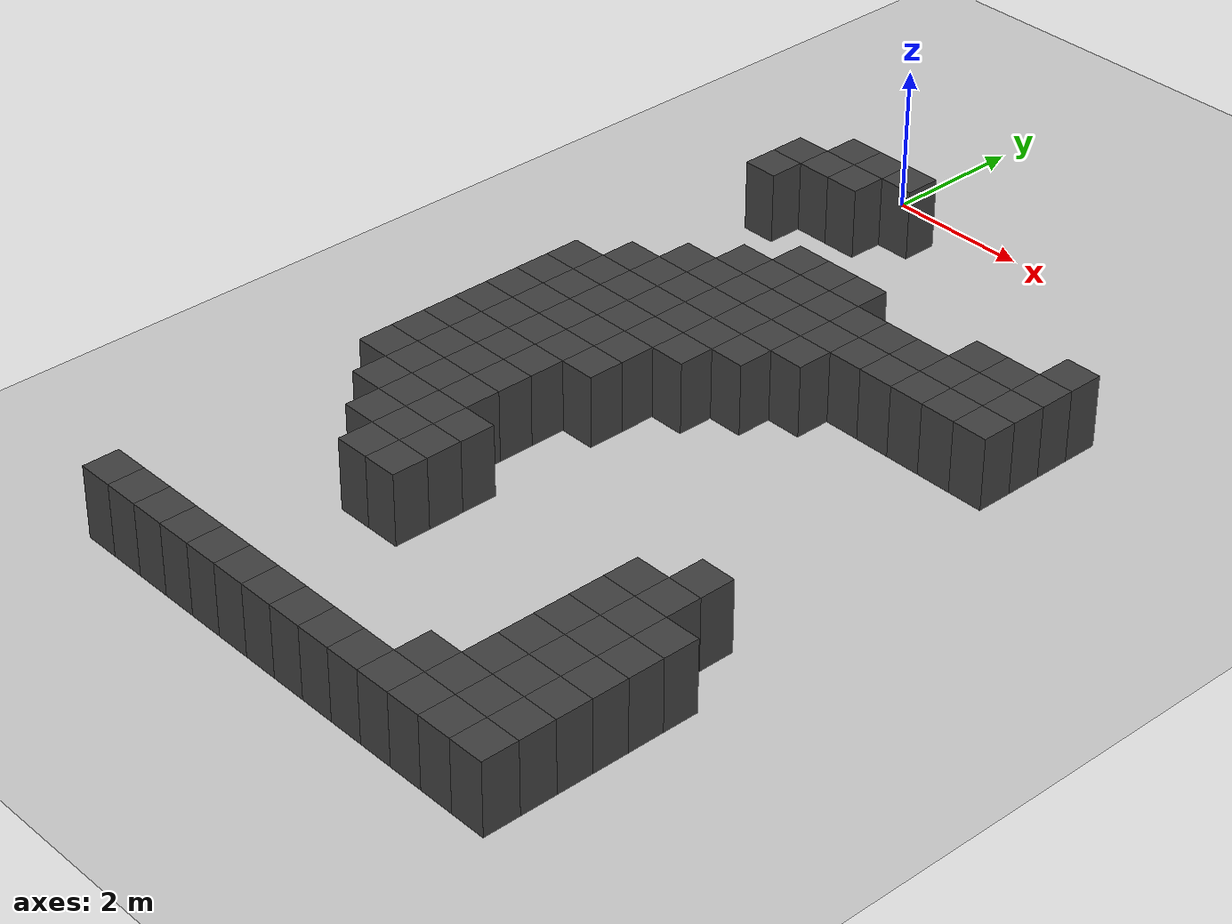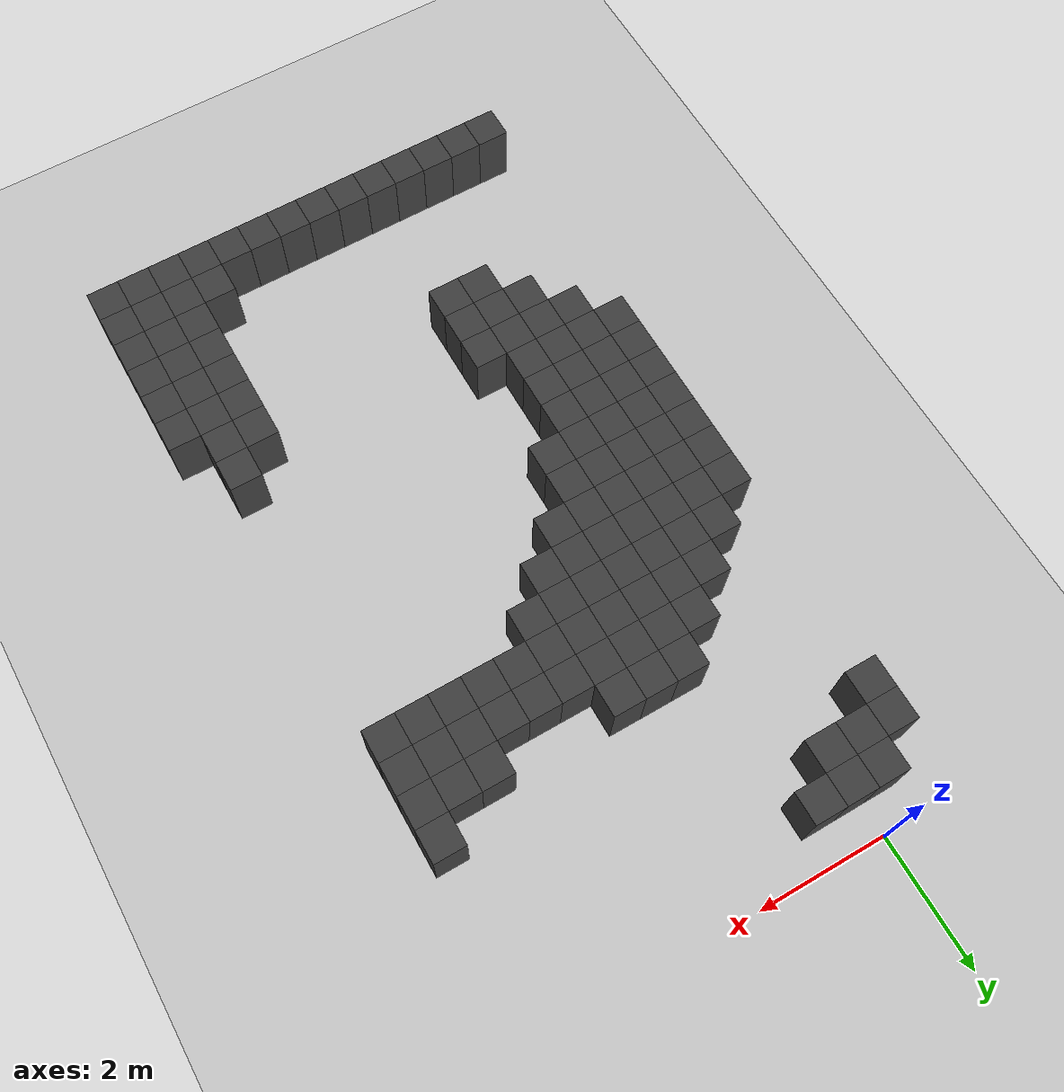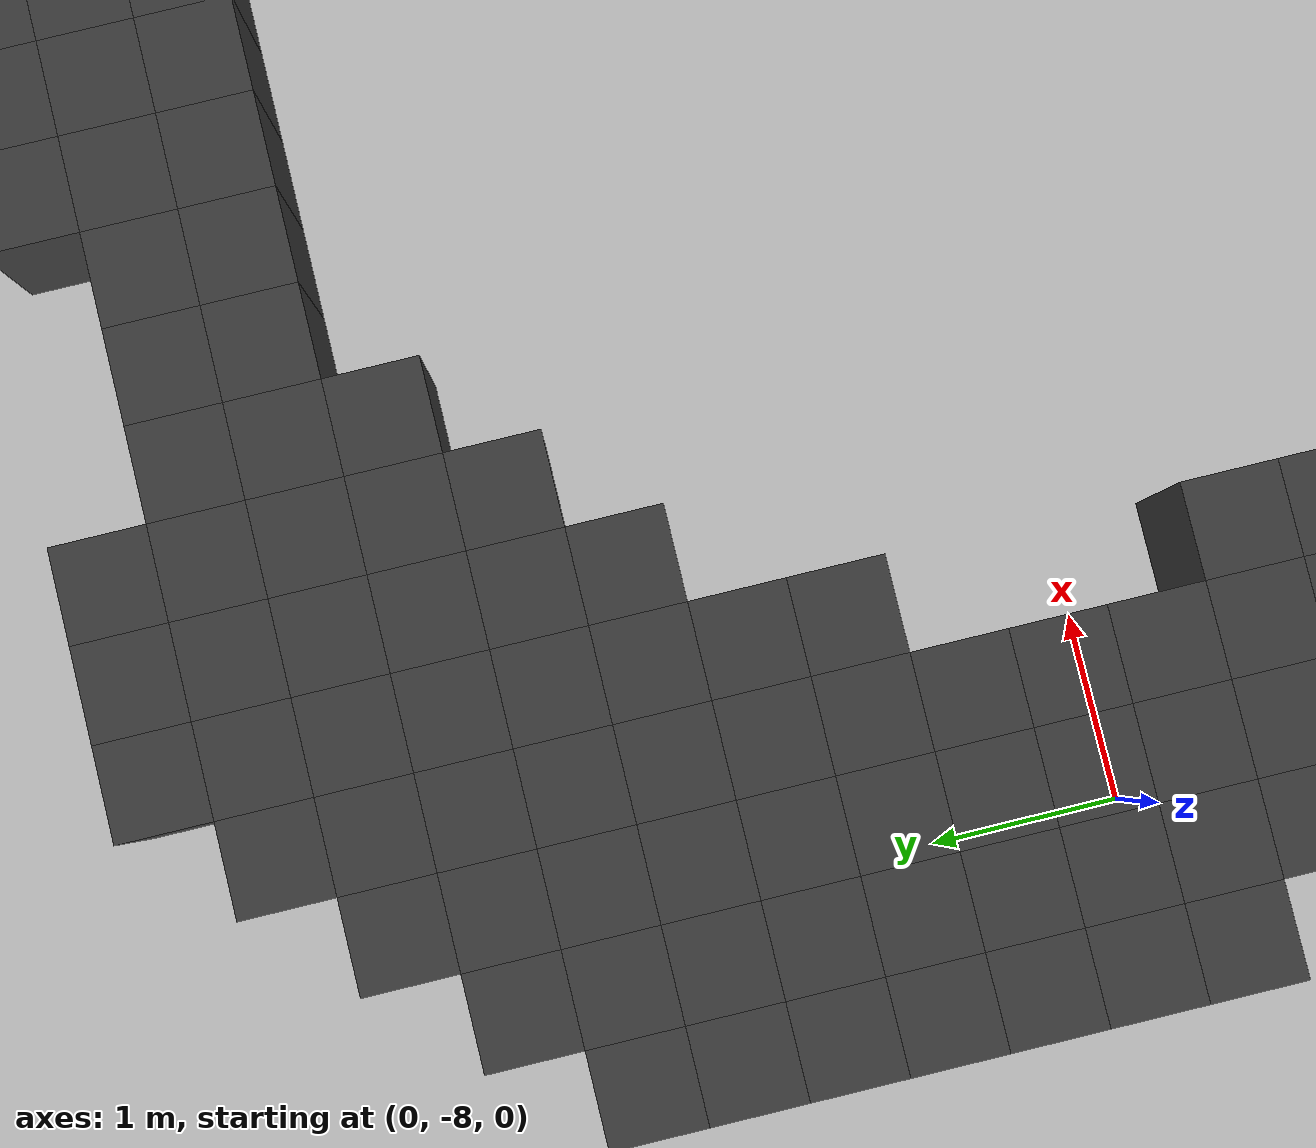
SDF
<sdf version="1.7">
 <world name="map_8074">
  <model name="ground_plane">
   <static>true</static>
   <link name="link">
    <collision name="collision">
     <geometry><plane><normal>0 0 1</normal><size>200 200</size></plane></geometry>
    </collision>
    <visual name="visual">
     <geometry><plane><normal>0 0 1</normal><size>200 200</size></plane></geometry>
     <material><ambient>0.8 0.8 0.8 1</ambient><diffuse>0.8 0.8 0.8 1</diffuse></material>
    </visual>
   </link>
  </model>
  <model name="maze_environment">
   <static>true</static>
   <link name="wall_388">
    <pose>-0.250 -0.750 0.500 0 0 0</pose>
    <collision name="col"><geometry><box><size>0.5 0.5 1.0</size></box></geometry></collision>
    <visual name="vis">
     <geometry><box><size>0.5 0.5 1.0</size></box></geometry>
     <material><ambient>0.15 0.15 0.15 1</ambient><diffuse>0.25 0.25 0.25 1</diffuse></material>
    </visual>
   </link>
   <link name="wall_389">
    <pose>0.250 -0.750 0.500 0 0 0</pose>
    <collision name="col"><geometry><box><size>0.5 0.5 1.0</size></box></geometry></collision>
    <visual name="vis">
     <geometry><box><size>0.5 0.5 1.0</size></box></geometry>
     <material><ambient>0.15 0.15 0.15 1</ambient><diffuse>0.25 0.25 0.25 1</diffuse></material>
    </visual>
   </link>
   <link name="wall_390">
    <pose>0.750 -0.750 0.500 0 0 0</pose>
    <collision name="col"><geometry><box><size>0.5 0.5 1.0</size></box></geometry></collision>
    <visual name="vis">
     <geometry><box><size>0.5 0.5 1.0</size></box></geometry>
     <material><ambient>0.15 0.15 0.15 1</ambient><diffuse>0.25 0.25 0.25 1</diffuse></material>
    </visual>
   </link>
   <link name="wall_418">
    <pose>-0.750 -1.250 0.500 0 0 0</pose>
    <collision name="col"><geometry><box><size>0.5 0.5 1.0</size></box></geometry></collision>
    <visual name="vis">
     <geometry><box><size>0.5 0.5 1.0</size></box></geometry>
     <material><ambient>0.15 0.15 0.15 1</ambient><diffuse>0.25 0.25 0.25 1</diffuse></material>
    </visual>
   </link>
   <link name="wall_419">
    <pose>-0.250 -1.250 0.500 0 0 0</pose>
    <collision name="col"><geometry><box><size>0.5 0.5 1.0</size></box></geometry></collision>
    <visual name="vis">
     <geometry><box><size>0.5 0.5 1.0</size></box></geometry>
     <material><ambient>0.15 0.15 0.15 1</ambient><diffuse>0.25 0.25 0.25 1</diffuse></material>
    </visual>
   </link>
   <link name="wall_420">
    <pose>0.250 -1.250 0.500 0 0 0</pose>
    <collision name="col"><geometry><box><size>0.5 0.5 1.0</size></box></geometry></collision>
    <visual name="vis">
     <geometry><box><size>0.5 0.5 1.0</size></box></geometry>
     <material><ambient>0.15 0.15 0.15 1</ambient><diffuse>0.25 0.25 0.25 1</diffuse></material>
    </visual>
   </link>
   <link name="wall_444">
    <pose>-0.750 -1.750 0.500 0 0 0</pose>
    <collision name="col"><geometry><box><size>0.5 0.5 1.0</size></box></geometry></collision>
    <visual name="vis">
     <geometry><box><size>0.5 0.5 1.0</size></box></geometry>
     <material><ambient>0.15 0.15 0.15 1</ambient><diffuse>0.25 0.25 0.25 1</diffuse></material>
    </visual>
   </link>
   <link name="wall_482">
    <pose>5.250 -2.750 0.500 0 0 0</pose>
    <collision name="col"><geometry><box><size>0.5 0.5 1.0</size></box></geometry></collision>
    <visual name="vis">
     <geometry><box><size>0.5 0.5 1.0</size></box></geometry>
     <material><ambient>0.15 0.15 0.15 1</ambient><diffuse>0.25 0.25 0.25 1</diffuse></material>
    </visual>
   </link>
   <link name="wall_499">
    <pose>1.250 -3.250 0.500 0 0 0</pose>
    <collision name="col"><geometry><box><size>0.5 0.5 1.0</size></box></geometry></collision>
    <visual name="vis">
     <geometry><box><size>0.5 0.5 1.0</size></box></geometry>
     <material><ambient>0.15 0.15 0.15 1</ambient><diffuse>0.25 0.25 0.25 1</diffuse></material>
    </visual>
   </link>
   <link name="wall_500">
    <pose>1.750 -3.250 0.500 0 0 0</pose>
    <collision name="col"><geometry><box><size>0.5 0.5 1.0</size></box></geometry></collision>
    <visual name="vis">
     <geometry><box><size>0.5 0.5 1.0</size></box></geometry>
     <material><ambient>0.15 0.15 0.15 1</ambient><diffuse>0.25 0.25 0.25 1</diffuse></material>
    </visual>
   </link>
   <link name="wall_501">
    <pose>2.250 -3.250 0.500 0 0 0</pose>
    <collision name="col"><geometry><box><size>0.5 0.5 1.0</size></box></geometry></collision>
    <visual name="vis">
     <geometry><box><size>0.5 0.5 1.0</size></box></geometry>
     <material><ambient>0.15 0.15 0.15 1</ambient><diffuse>0.25 0.25 0.25 1</diffuse></material>
    </visual>
   </link>
   <link name="wall_502">
    <pose>4.250 -3.250 0.500 0 0 0</pose>
    <collision name="col"><geometry><box><size>0.5 0.5 1.0</size></box></geometry></collision>
    <visual name="vis">
     <geometry><box><size>0.5 0.5 1.0</size></box></geometry>
     <material><ambient>0.15 0.15 0.15 1</ambient><diffuse>0.25 0.25 0.25 1</diffuse></material>
    </visual>
   </link>
   <link name="wall_503">
    <pose>4.750 -3.250 0.500 0 0 0</pose>
    <collision name="col"><geometry><box><size>0.5 0.5 1.0</size></box></geometry></collision>
    <visual name="vis">
     <geometry><box><size>0.5 0.5 1.0</size></box></geometry>
     <material><ambient>0.15 0.15 0.15 1</ambient><diffuse>0.25 0.25 0.25 1</diffuse></material>
    </visual>
   </link>
   <link name="wall_504">
    <pose>5.250 -3.250 0.500 0 0 0</pose>
    <collision name="col"><geometry><box><size>0.5 0.5 1.0</size></box></geometry></collision>
    <visual name="vis">
     <geometry><box><size>0.5 0.5 1.0</size></box></geometry>
     <material><ambient>0.15 0.15 0.15 1</ambient><diffuse>0.25 0.25 0.25 1</diffuse></material>
    </visual>
   </link>
   <link name="wall_522">
    <pose>0.750 -3.750 0.500 0 0 0</pose>
    <collision name="col"><geometry><box><size>0.5 0.5 1.0</size></box></geometry></collision>
    <visual name="vis">
     <geometry><box><size>0.5 0.5 1.0</size></box></geometry>
     <material><ambient>0.15 0.15 0.15 1</ambient><diffuse>0.25 0.25 0.25 1</diffuse></material>
    </visual>
   </link>
   <link name="wall_523">
    <pose>1.250 -3.750 0.500 0 0 0</pose>
    <collision name="col"><geometry><box><size>0.5 0.5 1.0</size></box></geometry></collision>
    <visual name="vis">
     <geometry><box><size>0.5 0.5 1.0</size></box></geometry>
     <material><ambient>0.15 0.15 0.15 1</ambient><diffuse>0.25 0.25 0.25 1</diffuse></material>
    </visual>
   </link>
   <link name="wall_524">
    <pose>1.750 -3.750 0.500 0 0 0</pose>
    <collision name="col"><geometry><box><size>0.5 0.5 1.0</size></box></geometry></collision>
    <visual name="vis">
     <geometry><box><size>0.5 0.5 1.0</size></box></geometry>
     <material><ambient>0.15 0.15 0.15 1</ambient><diffuse>0.25 0.25 0.25 1</diffuse></material>
    </visual>
   </link>
   <link name="wall_525">
    <pose>2.250 -3.750 0.500 0 0 0</pose>
    <collision name="col"><geometry><box><size>0.5 0.5 1.0</size></box></geometry></collision>
    <visual name="vis">
     <geometry><box><size>0.5 0.5 1.0</size></box></geometry>
     <material><ambient>0.15 0.15 0.15 1</ambient><diffuse>0.25 0.25 0.25 1</diffuse></material>
    </visual>
   </link>
   <link name="wall_526">
    <pose>2.750 -3.750 0.500 0 0 0</pose>
    <collision name="col"><geometry><box><size>0.5 0.5 1.0</size></box></geometry></collision>
    <visual name="vis">
     <geometry><box><size>0.5 0.5 1.0</size></box></geometry>
     <material><ambient>0.15 0.15 0.15 1</ambient><diffuse>0.25 0.25 0.25 1</diffuse></material>
    </visual>
   </link>
   <link name="wall_527">
    <pose>3.250 -3.750 0.500 0 0 0</pose>
    <collision name="col"><geometry><box><size>0.5 0.5 1.0</size></box></geometry></collision>
    <visual name="vis">
     <geometry><box><size>0.5 0.5 1.0</size></box></geometry>
     <material><ambient>0.15 0.15 0.15 1</ambient><diffuse>0.25 0.25 0.25 1</diffuse></material>
    </visual>
   </link>
   <link name="wall_528">
    <pose>3.750 -3.750 0.500 0 0 0</pose>
    <collision name="col"><geometry><box><size>0.5 0.5 1.0</size></box></geometry></collision>
    <visual name="vis">
     <geometry><box><size>0.5 0.5 1.0</size></box></geometry>
     <material><ambient>0.15 0.15 0.15 1</ambient><diffuse>0.25 0.25 0.25 1</diffuse></material>
    </visual>
   </link>
   <link name="wall_529">
    <pose>4.250 -3.750 0.500 0 0 0</pose>
    <collision name="col"><geometry><box><size>0.5 0.5 1.0</size></box></geometry></collision>
    <visual name="vis">
     <geometry><box><size>0.5 0.5 1.0</size></box></geometry>
     <material><ambient>0.15 0.15 0.15 1</ambient><diffuse>0.25 0.25 0.25 1</diffuse></material>
    </visual>
   </link>
   <link name="wall_530">
    <pose>4.750 -3.750 0.500 0 0 0</pose>
    <collision name="col"><geometry><box><size>0.5 0.5 1.0</size></box></geometry></collision>
    <visual name="vis">
     <geometry><box><size>0.5 0.5 1.0</size></box></geometry>
     <material><ambient>0.15 0.15 0.15 1</ambient><diffuse>0.25 0.25 0.25 1</diffuse></material>
    </visual>
   </link>
   <link name="wall_531">
    <pose>5.250 -3.750 0.500 0 0 0</pose>
    <collision name="col"><geometry><box><size>0.5 0.5 1.0</size></box></geometry></collision>
    <visual name="vis">
     <geometry><box><size>0.5 0.5 1.0</size></box></geometry>
     <material><ambient>0.15 0.15 0.15 1</ambient><diffuse>0.25 0.25 0.25 1</diffuse></material>
    </visual>
   </link>
   <link name="wall_552">
    <pose>0.250 -4.250 0.500 0 0 0</pose>
    <collision name="col"><geometry><box><size>0.5 0.5 1.0</size></box></geometry></collision>
    <visual name="vis">
     <geometry><box><size>0.5 0.5 1.0</size></box></geometry>
     <material><ambient>0.15 0.15 0.15 1</ambient><diffuse>0.25 0.25 0.25 1</diffuse></material>
    </visual>
   </link>
   <link name="wall_553">
    <pose>0.750 -4.250 0.500 0 0 0</pose>
    <collision name="col"><geometry><box><size>0.5 0.5 1.0</size></box></geometry></collision>
    <visual name="vis">
     <geometry><box><size>0.5 0.5 1.0</size></box></geometry>
     <material><ambient>0.15 0.15 0.15 1</ambient><diffuse>0.25 0.25 0.25 1</diffuse></material>
    </visual>
   </link>
   <link name="wall_554">
    <pose>1.250 -4.250 0.500 0 0 0</pose>
    <collision name="col"><geometry><box><size>0.5 0.5 1.0</size></box></geometry></collision>
    <visual name="vis">
     <geometry><box><size>0.5 0.5 1.0</size></box></geometry>
     <material><ambient>0.15 0.15 0.15 1</ambient><diffuse>0.25 0.25 0.25 1</diffuse></material>
    </visual>
   </link>
   <link name="wall_555">
    <pose>1.750 -4.250 0.500 0 0 0</pose>
    <collision name="col"><geometry><box><size>0.5 0.5 1.0</size></box></geometry></collision>
    <visual name="vis">
     <geometry><box><size>0.5 0.5 1.0</size></box></geometry>
     <material><ambient>0.15 0.15 0.15 1</ambient><diffuse>0.25 0.25 0.25 1</diffuse></material>
    </visual>
   </link>
   <link name="wall_556">
    <pose>2.250 -4.250 0.500 0 0 0</pose>
    <collision name="col"><geometry><box><size>0.5 0.5 1.0</size></box></geometry></collision>
    <visual name="vis">
     <geometry><box><size>0.5 0.5 1.0</size></box></geometry>
     <material><ambient>0.15 0.15 0.15 1</ambient><diffuse>0.25 0.25 0.25 1</diffuse></material>
    </visual>
   </link>
   <link name="wall_557">
    <pose>2.750 -4.250 0.500 0 0 0</pose>
    <collision name="col"><geometry><box><size>0.5 0.5 1.0</size></box></geometry></collision>
    <visual name="vis">
     <geometry><box><size>0.5 0.5 1.0</size></box></geometry>
     <material><ambient>0.15 0.15 0.15 1</ambient><diffuse>0.25 0.25 0.25 1</diffuse></material>
    </visual>
   </link>
   <link name="wall_558">
    <pose>3.250 -4.250 0.500 0 0 0</pose>
    <collision name="col"><geometry><box><size>0.5 0.5 1.0</size></box></geometry></collision>
    <visual name="vis">
     <geometry><box><size>0.5 0.5 1.0</size></box></geometry>
     <material><ambient>0.15 0.15 0.15 1</ambient><diffuse>0.25 0.25 0.25 1</diffuse></material>
    </visual>
   </link>
   <link name="wall_559">
    <pose>3.750 -4.250 0.500 0 0 0</pose>
    <collision name="col"><geometry><box><size>0.5 0.5 1.0</size></box></geometry></collision>
    <visual name="vis">
     <geometry><box><size>0.5 0.5 1.0</size></box></geometry>
     <material><ambient>0.15 0.15 0.15 1</ambient><diffuse>0.25 0.25 0.25 1</diffuse></material>
    </visual>
   </link>
   <link name="wall_560">
    <pose>4.250 -4.250 0.500 0 0 0</pose>
    <collision name="col"><geometry><box><size>0.5 0.5 1.0</size></box></geometry></collision>
    <visual name="vis">
     <geometry><box><size>0.5 0.5 1.0</size></box></geometry>
     <material><ambient>0.15 0.15 0.15 1</ambient><diffuse>0.25 0.25 0.25 1</diffuse></material>
    </visual>
   </link>
   <link name="wall_561">
    <pose>4.750 -4.250 0.500 0 0 0</pose>
    <collision name="col"><geometry><box><size>0.5 0.5 1.0</size></box></geometry></collision>
    <visual name="vis">
     <geometry><box><size>0.5 0.5 1.0</size></box></geometry>
     <material><ambient>0.15 0.15 0.15 1</ambient><diffuse>0.25 0.25 0.25 1</diffuse></material>
    </visual>
   </link>
   <link name="wall_562">
    <pose>5.250 -4.250 0.500 0 0 0</pose>
    <collision name="col"><geometry><box><size>0.5 0.5 1.0</size></box></geometry></collision>
    <visual name="vis">
     <geometry><box><size>0.5 0.5 1.0</size></box></geometry>
     <material><ambient>0.15 0.15 0.15 1</ambient><diffuse>0.25 0.25 0.25 1</diffuse></material>
    </visual>
   </link>
   <link name="wall_581">
    <pose>-0.250 -4.750 0.500 0 0 0</pose>
    <collision name="col"><geometry><box><size>0.5 0.5 1.0</size></box></geometry></collision>
    <visual name="vis">
     <geometry><box><size>0.5 0.5 1.0</size></box></geometry>
     <material><ambient>0.15 0.15 0.15 1</ambient><diffuse>0.25 0.25 0.25 1</diffuse></material>
    </visual>
   </link>
   <link name="wall_582">
    <pose>0.250 -4.750 0.500 0 0 0</pose>
    <collision name="col"><geometry><box><size>0.5 0.5 1.0</size></box></geometry></collision>
    <visual name="vis">
     <geometry><box><size>0.5 0.5 1.0</size></box></geometry>
     <material><ambient>0.15 0.15 0.15 1</ambient><diffuse>0.25 0.25 0.25 1</diffuse></material>
    </visual>
   </link>
   <link name="wall_583">
    <pose>0.750 -4.750 0.500 0 0 0</pose>
    <collision name="col"><geometry><box><size>0.5 0.5 1.0</size></box></geometry></collision>
    <visual name="vis">
     <geometry><box><size>0.5 0.5 1.0</size></box></geometry>
     <material><ambient>0.15 0.15 0.15 1</ambient><diffuse>0.25 0.25 0.25 1</diffuse></material>
    </visual>
   </link>
   <link name="wall_584">
    <pose>1.250 -4.750 0.500 0 0 0</pose>
    <collision name="col"><geometry><box><size>0.5 0.5 1.0</size></box></geometry></collision>
    <visual name="vis">
     <geometry><box><size>0.5 0.5 1.0</size></box></geometry>
     <material><ambient>0.15 0.15 0.15 1</ambient><diffuse>0.25 0.25 0.25 1</diffuse></material>
    </visual>
   </link>
   <link name="wall_585">
    <pose>1.750 -4.750 0.500 0 0 0</pose>
    <collision name="col"><geometry><box><size>0.5 0.5 1.0</size></box></geometry></collision>
    <visual name="vis">
     <geometry><box><size>0.5 0.5 1.0</size></box></geometry>
     <material><ambient>0.15 0.15 0.15 1</ambient><diffuse>0.25 0.25 0.25 1</diffuse></material>
    </visual>
   </link>
   <link name="wall_586">
    <pose>2.250 -4.750 0.500 0 0 0</pose>
    <collision name="col"><geometry><box><size>0.5 0.5 1.0</size></box></geometry></collision>
    <visual name="vis">
     <geometry><box><size>0.5 0.5 1.0</size></box></geometry>
     <material><ambient>0.15 0.15 0.15 1</ambient><diffuse>0.25 0.25 0.25 1</diffuse></material>
    </visual>
   </link>
   <link name="wall_587">
    <pose>2.750 -4.750 0.500 0 0 0</pose>
    <collision name="col"><geometry><box><size>0.5 0.5 1.0</size></box></geometry></collision>
    <visual name="vis">
     <geometry><box><size>0.5 0.5 1.0</size></box></geometry>
     <material><ambient>0.15 0.15 0.15 1</ambient><diffuse>0.25 0.25 0.25 1</diffuse></material>
    </visual>
   </link>
   <link name="wall_602">
    <pose>-0.750 -5.250 0.500 0 0 0</pose>
    <collision name="col"><geometry><box><size>0.5 0.5 1.0</size></box></geometry></collision>
    <visual name="vis">
     <geometry><box><size>0.5 0.5 1.0</size></box></geometry>
     <material><ambient>0.15 0.15 0.15 1</ambient><diffuse>0.25 0.25 0.25 1</diffuse></material>
    </visual>
   </link>
   <link name="wall_603">
    <pose>-0.250 -5.250 0.500 0 0 0</pose>
    <collision name="col"><geometry><box><size>0.5 0.5 1.0</size></box></geometry></collision>
    <visual name="vis">
     <geometry><box><size>0.5 0.5 1.0</size></box></geometry>
     <material><ambient>0.15 0.15 0.15 1</ambient><diffuse>0.25 0.25 0.25 1</diffuse></material>
    </visual>
   </link>
   <link name="wall_604">
    <pose>0.250 -5.250 0.500 0 0 0</pose>
    <collision name="col"><geometry><box><size>0.5 0.5 1.0</size></box></geometry></collision>
    <visual name="vis">
     <geometry><box><size>0.5 0.5 1.0</size></box></geometry>
     <material><ambient>0.15 0.15 0.15 1</ambient><diffuse>0.25 0.25 0.25 1</diffuse></material>
    </visual>
   </link>
   <link name="wall_605">
    <pose>0.750 -5.250 0.500 0 0 0</pose>
    <collision name="col"><geometry><box><size>0.5 0.5 1.0</size></box></geometry></collision>
    <visual name="vis">
     <geometry><box><size>0.5 0.5 1.0</size></box></geometry>
     <material><ambient>0.15 0.15 0.15 1</ambient><diffuse>0.25 0.25 0.25 1</diffuse></material>
    </visual>
   </link>
   <link name="wall_606">
    <pose>1.250 -5.250 0.500 0 0 0</pose>
    <collision name="col"><geometry><box><size>0.5 0.5 1.0</size></box></geometry></collision>
    <visual name="vis">
     <geometry><box><size>0.5 0.5 1.0</size></box></geometry>
     <material><ambient>0.15 0.15 0.15 1</ambient><diffuse>0.25 0.25 0.25 1</diffuse></material>
    </visual>
   </link>
   <link name="wall_607">
    <pose>1.750 -5.250 0.500 0 0 0</pose>
    <collision name="col"><geometry><box><size>0.5 0.5 1.0</size></box></geometry></collision>
    <visual name="vis">
     <geometry><box><size>0.5 0.5 1.0</size></box></geometry>
     <material><ambient>0.15 0.15 0.15 1</ambient><diffuse>0.25 0.25 0.25 1</diffuse></material>
    </visual>
   </link>
   <link name="wall_608">
    <pose>2.250 -5.250 0.500 0 0 0</pose>
    <collision name="col"><geometry><box><size>0.5 0.5 1.0</size></box></geometry></collision>
    <visual name="vis">
     <geometry><box><size>0.5 0.5 1.0</size></box></geometry>
     <material><ambient>0.15 0.15 0.15 1</ambient><diffuse>0.25 0.25 0.25 1</diffuse></material>
    </visual>
   </link>
   <link name="wall_620">
    <pose>-0.750 -5.750 0.500 0 0 0</pose>
    <collision name="col"><geometry><box><size>0.5 0.5 1.0</size></box></geometry></collision>
    <visual name="vis">
     <geometry><box><size>0.5 0.5 1.0</size></box></geometry>
     <material><ambient>0.15 0.15 0.15 1</ambient><diffuse>0.25 0.25 0.25 1</diffuse></material>
    </visual>
   </link>
   <link name="wall_621">
    <pose>-0.250 -5.750 0.500 0 0 0</pose>
    <collision name="col"><geometry><box><size>0.5 0.5 1.0</size></box></geometry></collision>
    <visual name="vis">
     <geometry><box><size>0.5 0.5 1.0</size></box></geometry>
     <material><ambient>0.15 0.15 0.15 1</ambient><diffuse>0.25 0.25 0.25 1</diffuse></material>
    </visual>
   </link>
   <link name="wall_622">
    <pose>0.250 -5.750 0.500 0 0 0</pose>
    <collision name="col"><geometry><box><size>0.5 0.5 1.0</size></box></geometry></collision>
    <visual name="vis">
     <geometry><box><size>0.5 0.5 1.0</size></box></geometry>
     <material><ambient>0.15 0.15 0.15 1</ambient><diffuse>0.25 0.25 0.25 1</diffuse></material>
    </visual>
   </link>
   <link name="wall_623">
    <pose>0.750 -5.750 0.500 0 0 0</pose>
    <collision name="col"><geometry><box><size>0.5 0.5 1.0</size></box></geometry></collision>
    <visual name="vis">
     <geometry><box><size>0.5 0.5 1.0</size></box></geometry>
     <material><ambient>0.15 0.15 0.15 1</ambient><diffuse>0.25 0.25 0.25 1</diffuse></material>
    </visual>
   </link>
   <link name="wall_624">
    <pose>1.250 -5.750 0.500 0 0 0</pose>
    <collision name="col"><geometry><box><size>0.5 0.5 1.0</size></box></geometry></collision>
    <visual name="vis">
     <geometry><box><size>0.5 0.5 1.0</size></box></geometry>
     <material><ambient>0.15 0.15 0.15 1</ambient><diffuse>0.25 0.25 0.25 1</diffuse></material>
    </visual>
   </link>
   <link name="wall_625">
    <pose>1.750 -5.750 0.500 0 0 0</pose>
    <collision name="col"><geometry><box><size>0.5 0.5 1.0</size></box></geometry></collision>
    <visual name="vis">
     <geometry><box><size>0.5 0.5 1.0</size></box></geometry>
     <material><ambient>0.15 0.15 0.15 1</ambient><diffuse>0.25 0.25 0.25 1</diffuse></material>
    </visual>
   </link>
   <link name="wall_635">
    <pose>-0.750 -6.250 0.500 0 0 0</pose>
    <collision name="col"><geometry><box><size>0.5 0.5 1.0</size></box></geometry></collision>
    <visual name="vis">
     <geometry><box><size>0.5 0.5 1.0</size></box></geometry>
     <material><ambient>0.15 0.15 0.15 1</ambient><diffuse>0.25 0.25 0.25 1</diffuse></material>
    </visual>
   </link>
   <link name="wall_636">
    <pose>-0.250 -6.250 0.500 0 0 0</pose>
    <collision name="col"><geometry><box><size>0.5 0.5 1.0</size></box></geometry></collision>
    <visual name="vis">
     <geometry><box><size>0.5 0.5 1.0</size></box></geometry>
     <material><ambient>0.15 0.15 0.15 1</ambient><diffuse>0.25 0.25 0.25 1</diffuse></material>
    </visual>
   </link>
   <link name="wall_637">
    <pose>0.250 -6.250 0.500 0 0 0</pose>
    <collision name="col"><geometry><box><size>0.5 0.5 1.0</size></box></geometry></collision>
    <visual name="vis">
     <geometry><box><size>0.5 0.5 1.0</size></box></geometry>
     <material><ambient>0.15 0.15 0.15 1</ambient><diffuse>0.25 0.25 0.25 1</diffuse></material>
    </visual>
   </link>
   <link name="wall_638">
    <pose>0.750 -6.250 0.500 0 0 0</pose>
    <collision name="col"><geometry><box><size>0.5 0.5 1.0</size></box></geometry></collision>
    <visual name="vis">
     <geometry><box><size>0.5 0.5 1.0</size></box></geometry>
     <material><ambient>0.15 0.15 0.15 1</ambient><diffuse>0.25 0.25 0.25 1</diffuse></material>
    </visual>
   </link>
   <link name="wall_639">
    <pose>1.250 -6.250 0.500 0 0 0</pose>
    <collision name="col"><geometry><box><size>0.5 0.5 1.0</size></box></geometry></collision>
    <visual name="vis">
     <geometry><box><size>0.5 0.5 1.0</size></box></geometry>
     <material><ambient>0.15 0.15 0.15 1</ambient><diffuse>0.25 0.25 0.25 1</diffuse></material>
    </visual>
   </link>
   <link name="wall_648">
    <pose>-0.750 -6.750 0.500 0 0 0</pose>
    <collision name="col"><geometry><box><size>0.5 0.5 1.0</size></box></geometry></collision>
    <visual name="vis">
     <geometry><box><size>0.5 0.5 1.0</size></box></geometry>
     <material><ambient>0.15 0.15 0.15 1</ambient><diffuse>0.25 0.25 0.25 1</diffuse></material>
    </visual>
   </link>
   <link name="wall_649">
    <pose>-0.250 -6.750 0.500 0 0 0</pose>
    <collision name="col"><geometry><box><size>0.5 0.5 1.0</size></box></geometry></collision>
    <visual name="vis">
     <geometry><box><size>0.5 0.5 1.0</size></box></geometry>
     <material><ambient>0.15 0.15 0.15 1</ambient><diffuse>0.25 0.25 0.25 1</diffuse></material>
    </visual>
   </link>
   <link name="wall_650">
    <pose>0.250 -6.750 0.500 0 0 0</pose>
    <collision name="col"><geometry><box><size>0.5 0.5 1.0</size></box></geometry></collision>
    <visual name="vis">
     <geometry><box><size>0.5 0.5 1.0</size></box></geometry>
     <material><ambient>0.15 0.15 0.15 1</ambient><diffuse>0.25 0.25 0.25 1</diffuse></material>
    </visual>
   </link>
   <link name="wall_651">
    <pose>0.750 -6.750 0.500 0 0 0</pose>
    <collision name="col"><geometry><box><size>0.5 0.5 1.0</size></box></geometry></collision>
    <visual name="vis">
     <geometry><box><size>0.5 0.5 1.0</size></box></geometry>
     <material><ambient>0.15 0.15 0.15 1</ambient><diffuse>0.25 0.25 0.25 1</diffuse></material>
    </visual>
   </link>
   <link name="wall_652">
    <pose>1.250 -6.750 0.500 0 0 0</pose>
    <collision name="col"><geometry><box><size>0.5 0.5 1.0</size></box></geometry></collision>
    <visual name="vis">
     <geometry><box><size>0.5 0.5 1.0</size></box></geometry>
     <material><ambient>0.15 0.15 0.15 1</ambient><diffuse>0.25 0.25 0.25 1</diffuse></material>
    </visual>
   </link>
   <link name="wall_660">
    <pose>-0.750 -7.250 0.500 0 0 0</pose>
    <collision name="col"><geometry><box><size>0.5 0.5 1.0</size></box></geometry></collision>
    <visual name="vis">
     <geometry><box><size>0.5 0.5 1.0</size></box></geometry>
     <material><ambient>0.15 0.15 0.15 1</ambient><diffuse>0.25 0.25 0.25 1</diffuse></material>
    </visual>
   </link>
   <link name="wall_661">
    <pose>-0.250 -7.250 0.500 0 0 0</pose>
    <collision name="col"><geometry><box><size>0.5 0.5 1.0</size></box></geometry></collision>
    <visual name="vis">
     <geometry><box><size>0.5 0.5 1.0</size></box></geometry>
     <material><ambient>0.15 0.15 0.15 1</ambient><diffuse>0.25 0.25 0.25 1</diffuse></material>
    </visual>
   </link>
   <link name="wall_662">
    <pose>0.250 -7.250 0.500 0 0 0</pose>
    <collision name="col"><geometry><box><size>0.5 0.5 1.0</size></box></geometry></collision>
    <visual name="vis">
     <geometry><box><size>0.5 0.5 1.0</size></box></geometry>
     <material><ambient>0.15 0.15 0.15 1</ambient><diffuse>0.25 0.25 0.25 1</diffuse></material>
    </visual>
   </link>
   <link name="wall_663">
    <pose>0.750 -7.250 0.500 0 0 0</pose>
    <collision name="col"><geometry><box><size>0.5 0.5 1.0</size></box></geometry></collision>
    <visual name="vis">
     <geometry><box><size>0.5 0.5 1.0</size></box></geometry>
     <material><ambient>0.15 0.15 0.15 1</ambient><diffuse>0.25 0.25 0.25 1</diffuse></material>
    </visual>
   </link>
   <link name="wall_669">
    <pose>-0.750 -7.750 0.500 0 0 0</pose>
    <collision name="col"><geometry><box><size>0.5 0.5 1.0</size></box></geometry></collision>
    <visual name="vis">
     <geometry><box><size>0.5 0.5 1.0</size></box></geometry>
     <material><ambient>0.15 0.15 0.15 1</ambient><diffuse>0.25 0.25 0.25 1</diffuse></material>
    </visual>
   </link>
   <link name="wall_670">
    <pose>-0.250 -7.750 0.500 0 0 0</pose>
    <collision name="col"><geometry><box><size>0.5 0.5 1.0</size></box></geometry></collision>
    <visual name="vis">
     <geometry><box><size>0.5 0.5 1.0</size></box></geometry>
     <material><ambient>0.15 0.15 0.15 1</ambient><diffuse>0.25 0.25 0.25 1</diffuse></material>
    </visual>
   </link>
   <link name="wall_671">
    <pose>0.250 -7.750 0.500 0 0 0</pose>
    <collision name="col"><geometry><box><size>0.5 0.5 1.0</size></box></geometry></collision>
    <visual name="vis">
     <geometry><box><size>0.5 0.5 1.0</size></box></geometry>
     <material><ambient>0.15 0.15 0.15 1</ambient><diffuse>0.25 0.25 0.25 1</diffuse></material>
    </visual>
   </link>
   <link name="wall_672">
    <pose>0.750 -7.750 0.500 0 0 0</pose>
    <collision name="col"><geometry><box><size>0.5 0.5 1.0</size></box></geometry></collision>
    <visual name="vis">
     <geometry><box><size>0.5 0.5 1.0</size></box></geometry>
     <material><ambient>0.15 0.15 0.15 1</ambient><diffuse>0.25 0.25 0.25 1</diffuse></material>
    </visual>
   </link>
   <link name="wall_677">
    <pose>-0.750 -8.250 0.500 0 0 0</pose>
    <collision name="col"><geometry><box><size>0.5 0.5 1.0</size></box></geometry></collision>
    <visual name="vis">
     <geometry><box><size>0.5 0.5 1.0</size></box></geometry>
     <material><ambient>0.15 0.15 0.15 1</ambient><diffuse>0.25 0.25 0.25 1</diffuse></material>
    </visual>
   </link>
   <link name="wall_678">
    <pose>-0.250 -8.250 0.500 0 0 0</pose>
    <collision name="col"><geometry><box><size>0.5 0.5 1.0</size></box></geometry></collision>
    <visual name="vis">
     <geometry><box><size>0.5 0.5 1.0</size></box></geometry>
     <material><ambient>0.15 0.15 0.15 1</ambient><diffuse>0.25 0.25 0.25 1</diffuse></material>
    </visual>
   </link>
   <link name="wall_679">
    <pose>0.250 -8.250 0.500 0 0 0</pose>
    <collision name="col"><geometry><box><size>0.5 0.5 1.0</size></box></geometry></collision>
    <visual name="vis">
     <geometry><box><size>0.5 0.5 1.0</size></box></geometry>
     <material><ambient>0.15 0.15 0.15 1</ambient><diffuse>0.25 0.25 0.25 1</diffuse></material>
    </visual>
   </link>
   <link name="wall_680">
    <pose>0.750 -8.250 0.500 0 0 0</pose>
    <collision name="col"><geometry><box><size>0.5 0.5 1.0</size></box></geometry></collision>
    <visual name="vis">
     <geometry><box><size>0.5 0.5 1.0</size></box></geometry>
     <material><ambient>0.15 0.15 0.15 1</ambient><diffuse>0.25 0.25 0.25 1</diffuse></material>
    </visual>
   </link>
   <link name="wall_685">
    <pose>-0.250 -8.750 0.500 0 0 0</pose>
    <collision name="col"><geometry><box><size>0.5 0.5 1.0</size></box></geometry></collision>
    <visual name="vis">
     <geometry><box><size>0.5 0.5 1.0</size></box></geometry>
     <material><ambient>0.15 0.15 0.15 1</ambient><diffuse>0.25 0.25 0.25 1</diffuse></material>
    </visual>
   </link>
   <link name="wall_686">
    <pose>0.250 -8.750 0.500 0 0 0</pose>
    <collision name="col"><geometry><box><size>0.5 0.5 1.0</size></box></geometry></collision>
    <visual name="vis">
     <geometry><box><size>0.5 0.5 1.0</size></box></geometry>
     <material><ambient>0.15 0.15 0.15 1</ambient><diffuse>0.25 0.25 0.25 1</diffuse></material>
    </visual>
   </link>
   <link name="wall_687">
    <pose>0.750 -8.750 0.500 0 0 0</pose>
    <collision name="col"><geometry><box><size>0.5 0.5 1.0</size></box></geometry></collision>
    <visual name="vis">
     <geometry><box><size>0.5 0.5 1.0</size></box></geometry>
     <material><ambient>0.15 0.15 0.15 1</ambient><diffuse>0.25 0.25 0.25 1</diffuse></material>
    </visual>
   </link>
   <link name="wall_688">
    <pose>1.250 -8.750 0.500 0 0 0</pose>
    <collision name="col"><geometry><box><size>0.5 0.5 1.0</size></box></geometry></collision>
    <visual name="vis">
     <geometry><box><size>0.5 0.5 1.0</size></box></geometry>
     <material><ambient>0.15 0.15 0.15 1</ambient><diffuse>0.25 0.25 0.25 1</diffuse></material>
    </visual>
   </link>
   <link name="wall_689">
    <pose>5.250 -8.750 0.500 0 0 0</pose>
    <collision name="col"><geometry><box><size>0.5 0.5 1.0</size></box></geometry></collision>
    <visual name="vis">
     <geometry><box><size>0.5 0.5 1.0</size></box></geometry>
     <material><ambient>0.15 0.15 0.15 1</ambient><diffuse>0.25 0.25 0.25 1</diffuse></material>
    </visual>
   </link>
   <link name="wall_693">
    <pose>0.250 -9.250 0.500 0 0 0</pose>
    <collision name="col"><geometry><box><size>0.5 0.5 1.0</size></box></geometry></collision>
    <visual name="vis">
     <geometry><box><size>0.5 0.5 1.0</size></box></geometry>
     <material><ambient>0.15 0.15 0.15 1</ambient><diffuse>0.25 0.25 0.25 1</diffuse></material>
    </visual>
   </link>
   <link name="wall_694">
    <pose>0.750 -9.250 0.500 0 0 0</pose>
    <collision name="col"><geometry><box><size>0.5 0.5 1.0</size></box></geometry></collision>
    <visual name="vis">
     <geometry><box><size>0.5 0.5 1.0</size></box></geometry>
     <material><ambient>0.15 0.15 0.15 1</ambient><diffuse>0.25 0.25 0.25 1</diffuse></material>
    </visual>
   </link>
   <link name="wall_695">
    <pose>1.250 -9.250 0.500 0 0 0</pose>
    <collision name="col"><geometry><box><size>0.5 0.5 1.0</size></box></geometry></collision>
    <visual name="vis">
     <geometry><box><size>0.5 0.5 1.0</size></box></geometry>
     <material><ambient>0.15 0.15 0.15 1</ambient><diffuse>0.25 0.25 0.25 1</diffuse></material>
    </visual>
   </link>
   <link name="wall_696">
    <pose>4.750 -9.250 0.500 0 0 0</pose>
    <collision name="col"><geometry><box><size>0.5 0.5 1.0</size></box></geometry></collision>
    <visual name="vis">
     <geometry><box><size>0.5 0.5 1.0</size></box></geometry>
     <material><ambient>0.15 0.15 0.15 1</ambient><diffuse>0.25 0.25 0.25 1</diffuse></material>
    </visual>
   </link>
   <link name="wall_697">
    <pose>5.250 -9.250 0.500 0 0 0</pose>
    <collision name="col"><geometry><box><size>0.5 0.5 1.0</size></box></geometry></collision>
    <visual name="vis">
     <geometry><box><size>0.5 0.5 1.0</size></box></geometry>
     <material><ambient>0.15 0.15 0.15 1</ambient><diffuse>0.25 0.25 0.25 1</diffuse></material>
    </visual>
   </link>
   <link name="wall_705">
    <pose>0.750 -9.750 0.500 0 0 0</pose>
    <collision name="col"><geometry><box><size>0.5 0.5 1.0</size></box></geometry></collision>
    <visual name="vis">
     <geometry><box><size>0.5 0.5 1.0</size></box></geometry>
     <material><ambient>0.15 0.15 0.15 1</ambient><diffuse>0.25 0.25 0.25 1</diffuse></material>
    </visual>
   </link>
   <link name="wall_706">
    <pose>1.250 -9.750 0.500 0 0 0</pose>
    <collision name="col"><geometry><box><size>0.5 0.5 1.0</size></box></geometry></collision>
    <visual name="vis">
     <geometry><box><size>0.5 0.5 1.0</size></box></geometry>
     <material><ambient>0.15 0.15 0.15 1</ambient><diffuse>0.25 0.25 0.25 1</diffuse></material>
    </visual>
   </link>
   <link name="wall_707">
    <pose>4.750 -9.750 0.500 0 0 0</pose>
    <collision name="col"><geometry><box><size>0.5 0.5 1.0</size></box></geometry></collision>
    <visual name="vis">
     <geometry><box><size>0.5 0.5 1.0</size></box></geometry>
     <material><ambient>0.15 0.15 0.15 1</ambient><diffuse>0.25 0.25 0.25 1</diffuse></material>
    </visual>
   </link>
   <link name="wall_708">
    <pose>5.250 -9.750 0.500 0 0 0</pose>
    <collision name="col"><geometry><box><size>0.5 0.5 1.0</size></box></geometry></collision>
    <visual name="vis">
     <geometry><box><size>0.5 0.5 1.0</size></box></geometry>
     <material><ambient>0.15 0.15 0.15 1</ambient><diffuse>0.25 0.25 0.25 1</diffuse></material>
    </visual>
   </link>
   <link name="wall_709">
    <pose>5.750 -9.750 0.500 0 0 0</pose>
    <collision name="col"><geometry><box><size>0.5 0.5 1.0</size></box></geometry></collision>
    <visual name="vis">
     <geometry><box><size>0.5 0.5 1.0</size></box></geometry>
     <material><ambient>0.15 0.15 0.15 1</ambient><diffuse>0.25 0.25 0.25 1</diffuse></material>
    </visual>
   </link>
   <link name="wall_720">
    <pose>4.750 -10.250 0.500 0 0 0</pose>
    <collision name="col"><geometry><box><size>0.5 0.5 1.0</size></box></geometry></collision>
    <visual name="vis">
     <geometry><box><size>0.5 0.5 1.0</size></box></geometry>
     <material><ambient>0.15 0.15 0.15 1</ambient><diffuse>0.25 0.25 0.25 1</diffuse></material>
    </visual>
   </link>
   <link name="wall_721">
    <pose>5.250 -10.250 0.500 0 0 0</pose>
    <collision name="col"><geometry><box><size>0.5 0.5 1.0</size></box></geometry></collision>
    <visual name="vis">
     <geometry><box><size>0.5 0.5 1.0</size></box></geometry>
     <material><ambient>0.15 0.15 0.15 1</ambient><diffuse>0.25 0.25 0.25 1</diffuse></material>
    </visual>
   </link>
   <link name="wall_722">
    <pose>5.750 -10.250 0.500 0 0 0</pose>
    <collision name="col"><geometry><box><size>0.5 0.5 1.0</size></box></geometry></collision>
    <visual name="vis">
     <geometry><box><size>0.5 0.5 1.0</size></box></geometry>
     <material><ambient>0.15 0.15 0.15 1</ambient><diffuse>0.25 0.25 0.25 1</diffuse></material>
    </visual>
   </link>
   <link name="wall_736">
    <pose>4.750 -10.750 0.500 0 0 0</pose>
    <collision name="col"><geometry><box><size>0.5 0.5 1.0</size></box></geometry></collision>
    <visual name="vis">
     <geometry><box><size>0.5 0.5 1.0</size></box></geometry>
     <material><ambient>0.15 0.15 0.15 1</ambient><diffuse>0.25 0.25 0.25 1</diffuse></material>
    </visual>
   </link>
   <link name="wall_737">
    <pose>5.250 -10.750 0.500 0 0 0</pose>
    <collision name="col"><geometry><box><size>0.5 0.5 1.0</size></box></geometry></collision>
    <visual name="vis">
     <geometry><box><size>0.5 0.5 1.0</size></box></geometry>
     <material><ambient>0.15 0.15 0.15 1</ambient><diffuse>0.25 0.25 0.25 1</diffuse></material>
    </visual>
   </link>
   <link name="wall_738">
    <pose>5.750 -10.750 0.500 0 0 0</pose>
    <collision name="col"><geometry><box><size>0.5 0.5 1.0</size></box></geometry></collision>
    <visual name="vis">
     <geometry><box><size>0.5 0.5 1.0</size></box></geometry>
     <material><ambient>0.15 0.15 0.15 1</ambient><diffuse>0.25 0.25 0.25 1</diffuse></material>
    </visual>
   </link>
   <link name="wall_752">
    <pose>4.750 -11.250 0.500 0 0 0</pose>
    <collision name="col"><geometry><box><size>0.5 0.5 1.0</size></box></geometry></collision>
    <visual name="vis">
     <geometry><box><size>0.5 0.5 1.0</size></box></geometry>
     <material><ambient>0.15 0.15 0.15 1</ambient><diffuse>0.25 0.25 0.25 1</diffuse></material>
    </visual>
   </link>
   <link name="wall_753">
    <pose>5.250 -11.250 0.500 0 0 0</pose>
    <collision name="col"><geometry><box><size>0.5 0.5 1.0</size></box></geometry></collision>
    <visual name="vis">
     <geometry><box><size>0.5 0.5 1.0</size></box></geometry>
     <material><ambient>0.15 0.15 0.15 1</ambient><diffuse>0.25 0.25 0.25 1</diffuse></material>
    </visual>
   </link>
   <link name="wall_754">
    <pose>5.750 -11.250 0.500 0 0 0</pose>
    <collision name="col"><geometry><box><size>0.5 0.5 1.0</size></box></geometry></collision>
    <visual name="vis">
     <geometry><box><size>0.5 0.5 1.0</size></box></geometry>
     <material><ambient>0.15 0.15 0.15 1</ambient><diffuse>0.25 0.25 0.25 1</diffuse></material>
    </visual>
   </link>
   <link name="wall_771">
    <pose>4.250 -11.750 0.500 0 0 0</pose>
    <collision name="col"><geometry><box><size>0.5 0.5 1.0</size></box></geometry></collision>
    <visual name="vis">
     <geometry><box><size>0.5 0.5 1.0</size></box></geometry>
     <material><ambient>0.15 0.15 0.15 1</ambient><diffuse>0.25 0.25 0.25 1</diffuse></material>
    </visual>
   </link>
   <link name="wall_772">
    <pose>4.750 -11.750 0.500 0 0 0</pose>
    <collision name="col"><geometry><box><size>0.5 0.5 1.0</size></box></geometry></collision>
    <visual name="vis">
     <geometry><box><size>0.5 0.5 1.0</size></box></geometry>
     <material><ambient>0.15 0.15 0.15 1</ambient><diffuse>0.25 0.25 0.25 1</diffuse></material>
    </visual>
   </link>
   <link name="wall_773">
    <pose>5.250 -11.750 0.500 0 0 0</pose>
    <collision name="col"><geometry><box><size>0.5 0.5 1.0</size></box></geometry></collision>
    <visual name="vis">
     <geometry><box><size>0.5 0.5 1.0</size></box></geometry>
     <material><ambient>0.15 0.15 0.15 1</ambient><diffuse>0.25 0.25 0.25 1</diffuse></material>
    </visual>
   </link>
   <link name="wall_774">
    <pose>5.750 -11.750 0.500 0 0 0</pose>
    <collision name="col"><geometry><box><size>0.5 0.5 1.0</size></box></geometry></collision>
    <visual name="vis">
     <geometry><box><size>0.5 0.5 1.0</size></box></geometry>
     <material><ambient>0.15 0.15 0.15 1</ambient><diffuse>0.25 0.25 0.25 1</diffuse></material>
    </visual>
   </link>
   <link name="wall_800">
    <pose>-0.750 -12.250 0.500 0 0 0</pose>
    <collision name="col"><geometry><box><size>0.5 0.5 1.0</size></box></geometry></collision>
    <visual name="vis">
     <geometry><box><size>0.5 0.5 1.0</size></box></geometry>
     <material><ambient>0.15 0.15 0.15 1</ambient><diffuse>0.25 0.25 0.25 1</diffuse></material>
    </visual>
   </link>
   <link name="wall_801">
    <pose>-0.250 -12.250 0.500 0 0 0</pose>
    <collision name="col"><geometry><box><size>0.5 0.5 1.0</size></box></geometry></collision>
    <visual name="vis">
     <geometry><box><size>0.5 0.5 1.0</size></box></geometry>
     <material><ambient>0.15 0.15 0.15 1</ambient><diffuse>0.25 0.25 0.25 1</diffuse></material>
    </visual>
   </link>
   <link name="wall_802">
    <pose>0.250 -12.250 0.500 0 0 0</pose>
    <collision name="col"><geometry><box><size>0.5 0.5 1.0</size></box></geometry></collision>
    <visual name="vis">
     <geometry><box><size>0.5 0.5 1.0</size></box></geometry>
     <material><ambient>0.15 0.15 0.15 1</ambient><diffuse>0.25 0.25 0.25 1</diffuse></material>
    </visual>
   </link>
   <link name="wall_803">
    <pose>0.750 -12.250 0.500 0 0 0</pose>
    <collision name="col"><geometry><box><size>0.5 0.5 1.0</size></box></geometry></collision>
    <visual name="vis">
     <geometry><box><size>0.5 0.5 1.0</size></box></geometry>
     <material><ambient>0.15 0.15 0.15 1</ambient><diffuse>0.25 0.25 0.25 1</diffuse></material>
    </visual>
   </link>
   <link name="wall_804">
    <pose>1.250 -12.250 0.500 0 0 0</pose>
    <collision name="col"><geometry><box><size>0.5 0.5 1.0</size></box></geometry></collision>
    <visual name="vis">
     <geometry><box><size>0.5 0.5 1.0</size></box></geometry>
     <material><ambient>0.15 0.15 0.15 1</ambient><diffuse>0.25 0.25 0.25 1</diffuse></material>
    </visual>
   </link>
   <link name="wall_805">
    <pose>1.750 -12.250 0.500 0 0 0</pose>
    <collision name="col"><geometry><box><size>0.5 0.5 1.0</size></box></geometry></collision>
    <visual name="vis">
     <geometry><box><size>0.5 0.5 1.0</size></box></geometry>
     <material><ambient>0.15 0.15 0.15 1</ambient><diffuse>0.25 0.25 0.25 1</diffuse></material>
    </visual>
   </link>
   <link name="wall_806">
    <pose>2.250 -12.250 0.500 0 0 0</pose>
    <collision name="col"><geometry><box><size>0.5 0.5 1.0</size></box></geometry></collision>
    <visual name="vis">
     <geometry><box><size>0.5 0.5 1.0</size></box></geometry>
     <material><ambient>0.15 0.15 0.15 1</ambient><diffuse>0.25 0.25 0.25 1</diffuse></material>
    </visual>
   </link>
   <link name="wall_807">
    <pose>2.750 -12.250 0.500 0 0 0</pose>
    <collision name="col"><geometry><box><size>0.5 0.5 1.0</size></box></geometry></collision>
    <visual name="vis">
     <geometry><box><size>0.5 0.5 1.0</size></box></geometry>
     <material><ambient>0.15 0.15 0.15 1</ambient><diffuse>0.25 0.25 0.25 1</diffuse></material>
    </visual>
   </link>
   <link name="wall_808">
    <pose>3.250 -12.250 0.500 0 0 0</pose>
    <collision name="col"><geometry><box><size>0.5 0.5 1.0</size></box></geometry></collision>
    <visual name="vis">
     <geometry><box><size>0.5 0.5 1.0</size></box></geometry>
     <material><ambient>0.15 0.15 0.15 1</ambient><diffuse>0.25 0.25 0.25 1</diffuse></material>
    </visual>
   </link>
   <link name="wall_809">
    <pose>3.750 -12.250 0.500 0 0 0</pose>
    <collision name="col"><geometry><box><size>0.5 0.5 1.0</size></box></geometry></collision>
    <visual name="vis">
     <geometry><box><size>0.5 0.5 1.0</size></box></geometry>
     <material><ambient>0.15 0.15 0.15 1</ambient><diffuse>0.25 0.25 0.25 1</diffuse></material>
    </visual>
   </link>
   <link name="wall_810">
    <pose>4.250 -12.250 0.500 0 0 0</pose>
    <collision name="col"><geometry><box><size>0.5 0.5 1.0</size></box></geometry></collision>
    <visual name="vis">
     <geometry><box><size>0.5 0.5 1.0</size></box></geometry>
     <material><ambient>0.15 0.15 0.15 1</ambient><diffuse>0.25 0.25 0.25 1</diffuse></material>
    </visual>
   </link>
   <link name="wall_811">
    <pose>4.750 -12.250 0.500 0 0 0</pose>
    <collision name="col"><geometry><box><size>0.5 0.5 1.0</size></box></geometry></collision>
    <visual name="vis">
     <geometry><box><size>0.5 0.5 1.0</size></box></geometry>
     <material><ambient>0.15 0.15 0.15 1</ambient><diffuse>0.25 0.25 0.25 1</diffuse></material>
    </visual>
   </link>
   <link name="wall_812">
    <pose>5.250 -12.250 0.500 0 0 0</pose>
    <collision name="col"><geometry><box><size>0.5 0.5 1.0</size></box></geometry></collision>
    <visual name="vis">
     <geometry><box><size>0.5 0.5 1.0</size></box></geometry>
     <material><ambient>0.15 0.15 0.15 1</ambient><diffuse>0.25 0.25 0.25 1</diffuse></material>
    </visual>
   </link>
   <link name="wall_813">
    <pose>5.750 -12.250 0.500 0 0 0</pose>
    <collision name="col"><geometry><box><size>0.5 0.5 1.0</size></box></geometry></collision>
    <visual name="vis">
     <geometry><box><size>0.5 0.5 1.0</size></box></geometry>
     <material><ambient>0.15 0.15 0.15 1</ambient><diffuse>0.25 0.25 0.25 1</diffuse></material>
    </visual>
   </link>
  </model>
 </world>
</sdf>
